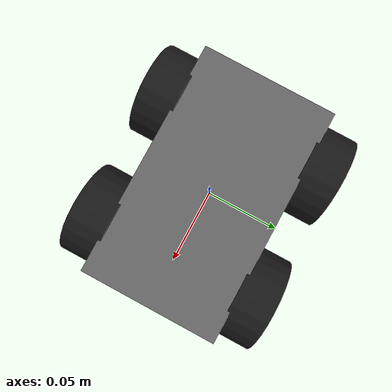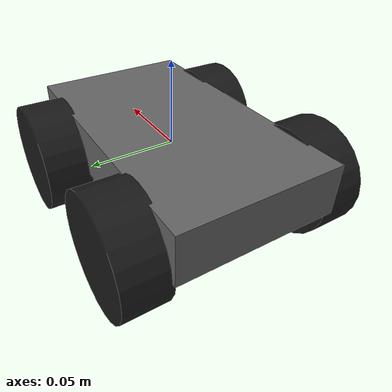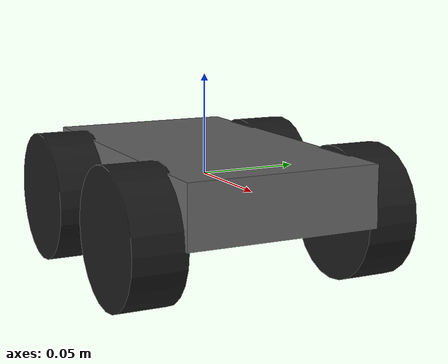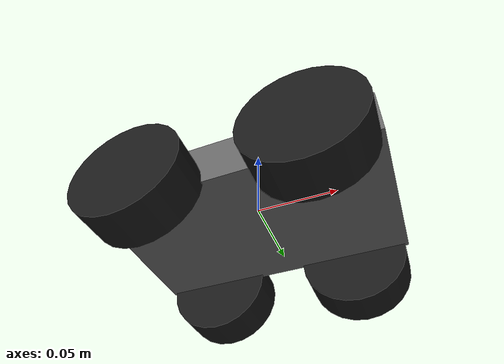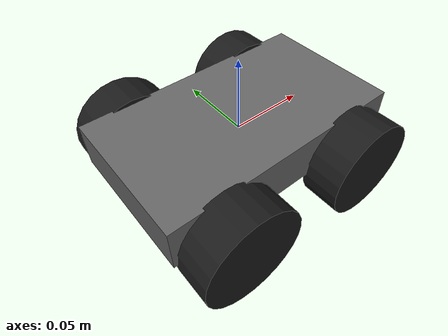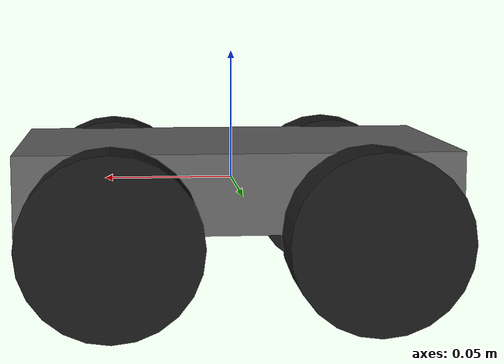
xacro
<?xml version="1.0"?>
<robot xmlns:xacro="http://www.ros.org/wiki/xacro" name="picar">

  <xacro:arg name="prefix" default=""/>
  <xacro:property name="prefix" value="$(arg prefix)"/>
  <xacro:arg name="use_mock_hardware" default="false"/>

  <xacro:include filename="../ros2_control/picar.ros2_control.xacro"/>

  <xacro:property name="wheel_radius"     value="0.033"/>   <!-- MEASURE -->
  <xacro:property name="wheel_width"      value="0.026"/>   <!-- MEASURE -->
  <xacro:property name="wheel_separation" value="0.117"/>   <!-- MEASURE (track width) -->
  <xacro:property name="wheelbase"        value="0.095"/>   <!-- MEASURE (front to rear) -->
  <xacro:property name="base_length"      value="0.165"/>   <!-- MEASURE -->
  <xacro:property name="base_width"       value="0.095"/>   <!-- MEASURE -->
  <xacro:property name="base_height"      value="0.030"/>   <!-- MEASURE -->

  <material name="grey"><color rgba="0.4 0.4 0.4 1.0"/></material>
  <material name="dark"><color rgba="0.1 0.1 0.1 1.0"/></material>

  <link name="${prefix}base_link">
    <visual>
      <origin xyz="0 0 0" rpy="0 0 0"/>
      <geometry><box size="${base_length} ${base_width} ${base_height}"/></geometry>
      <material name="grey"/>
    </visual>
    <collision>
      <geometry><box size="${base_length} ${base_width} ${base_height}"/></geometry>
    </collision>
  </link>

  <!-- One wheel: a cylinder rolling about its own Y axis. -->
  <xacro:macro name="wheel" params="name x y">
    <link name="${prefix}${name}">
      <visual>
        <origin xyz="0 0 0" rpy="${pi/2} 0 0"/>
        <geometry><cylinder radius="${wheel_radius}" length="${wheel_width}"/></geometry>
        <material name="dark"/>
      </visual>
      <collision>
        <origin xyz="0 0 0" rpy="${pi/2} 0 0"/>
        <geometry><cylinder radius="${wheel_radius}" length="${wheel_width}"/></geometry>
      </collision>
    </link>

    <joint name="${prefix}${name}_joint" type="continuous">
      <parent link="${prefix}base_link"/>
      <child link="${prefix}${name}"/>
      <origin xyz="${x} ${y} ${-base_height/2}" rpy="0 0 0"/>
      <axis xyz="0 1 0"/>
    </joint>
  </xacro:macro>

  <xacro:wheel name="left_front_wheel"  x="${ wheelbase/2}" y="${ wheel_separation/2}"/>
  <xacro:wheel name="right_front_wheel" x="${ wheelbase/2}" y="${-wheel_separation/2}"/>
  <xacro:wheel name="left_rear_wheel"   x="${-wheelbase/2}" y="${ wheel_separation/2}"/>
  <xacro:wheel name="right_rear_wheel"  x="${-wheelbase/2}" y="${-wheel_separation/2}"/>

  <xacro:picar_ros2_control
    name="PiCarSystem"
    prefix="$(arg prefix)"
    use_mock_hardware="$(arg use_mock_hardware)"/>

</robot>
